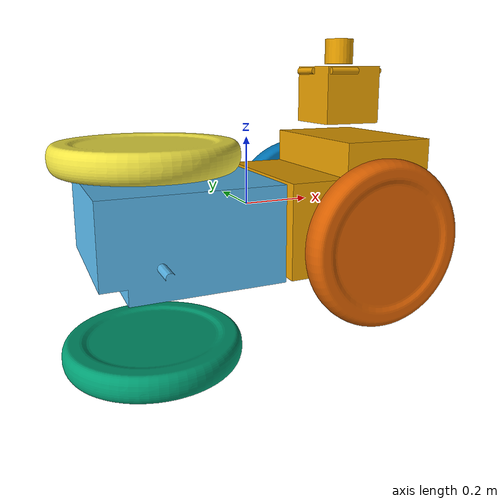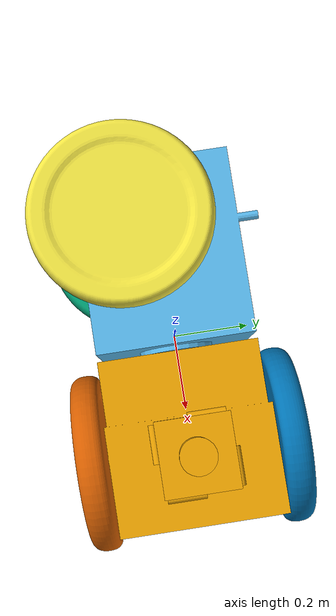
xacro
<?xml version='1.0' encoding='utf-8'?>
<robot name='r3' xmlns:xacro="http://ros.org/wiki/xacro">
  <xacro:arg name="name" default="r3"/>
  <xacro:property name="robot_namespace" value="$(arg name)"/>

  <link name='${robot_namespace}/base_link'>
    <inertial>
      <origin xyz='0.002132 0.043885 0.087872' rpy='0 -0 0'/>
      <mass value='55.50075'/>
      <inertia ixx='4.45363' ixy='0.00719725' ixz='-0.0297844' iyy='2.48887' iyz='-0.388599' izz='5.58601'/>
    </inertial>
    <collision name='base_link_collision'>
      <origin xyz='0 0 0' rpy='0 -0 1.5708'/>
      <geometry>
        <mesh filename='meshes/base_link.STL' scale='1 1 1'/>
      </geometry>
    </collision>
    <collision name='base_link_fixed_joint_lump__sensor_payload_link_collision_1'>
      <origin xyz='0.31054 -0.0903 0.23288' rpy='1.5708 -0 0'/>
      <geometry>
        <mesh filename='meshes/payload_cube.stl' scale='1 1 1'/>
      </geometry>
    </collision>
    <visual name='base_link_visual'>
      <origin xyz='0 0 0' rpy='0 -0 1.5708'/>
      <geometry>
        <mesh filename='meshes/base_link.STL' scale='1 1 1'/>
      </geometry>
    </visual>
    <visual name='base_link_fixed_joint_lump__sensor_payload_link_visual_1'>
      <origin xyz='0.31054 -0.0903 0.23288' rpy='1.5708 -0 0'/>
      <geometry>
        <mesh filename='meshes/payload_cube.stl' scale='1 1 1'/>
      </geometry>
    </visual>
    <visual name='base_link_fixed_joint_lump__front_laser_visual_visual_2'>
      <origin xyz='0.310583 0.001835 0.44788' rpy='5e-06 -0 0'/>
      <geometry>
        <cylinder radius='0.04267' length='0.07357'/>
      </geometry>
    </visual>
    <visual name='base_link_fixed_joint_lump__rs_back_link_visual_3'>
      <origin xyz='0.22054 0.037199 0.38988' rpy='1.5708 -0 3.14159'/>
      <geometry>
        <cylinder radius='0.01' length='0.09'/>
      </geometry>
    </visual>
    <visual name='base_link_fixed_joint_lump__rs_front_link_visual_4'>
      <origin xyz='0.40054 -0.035301 0.38988' rpy='1.5708 -0 0'/>
      <geometry>
        <cylinder radius='0.01' length='0.09'/>
      </geometry>
    </visual>
    <visual name='base_link_fixed_joint_lump__rs_left_link_visual_5'>
      <origin xyz='0.34854 0.091699 0.389881' rpy='1.5708 -4e-06 1.5708'/>
      <geometry>
        <cylinder radius='0.01' length='0.09'/>
      </geometry>
    </visual>
    <visual name='base_link_fixed_joint_lump__rs_right_link_visual_6'>
      <origin xyz='0.27254 -0.090301 0.38988' rpy='1.5708 -4e-06 1.5708'/>
      <geometry>
        <cylinder radius='0.01' length='0.09'/>
      </geometry>
    </visual>
  </link>
  <sensor name='imu_sensor' update_rate='250'>
    <parent link='base_link'/>
    <origin xyz='0 0 0' rpy='0 -0 0'/>
  </sensor>
  <sensor name='front_laser' update_rate='10'>
    <parent link='base_link'/>
    <origin xyz='0.310583 0.001835 0.44788' rpy='5e-06 -0 0'/>
    <ray>
      <horizontal samples='10000' resolution='0.1' min_angle='-3.14159' max_angle='3.14159' />
      <vertical samples='16' resolution='1' min_angle='-0.261799' max_angle='0.261799' />
    </ray>
  </sensor>
  <sensor name='rs_rear' update_rate='15'>
    <parent link='base_link'/>
    <origin xyz='0.22054 0.037199 0.38988' rpy='-2e-06 -0 3.14159'/>
    <camera>
      <image width='320' height='240' format='R8G8B8' hfov='1.0472' near='0.01' far='300' />
    </camera>
  </sensor>
  <sensor name='rs_front' update_rate='15'>
    <parent link='base_link'/>
    <origin xyz='0.40054 -0.035301 0.38988' rpy='5e-06 -0 0'/>
    <camera>
      <image width='320' height='240' format='R8G8B8' hfov='1.0472' near='0.01' far='300' />
    </camera>
  </sensor>
  <sensor name='rs_left' update_rate='15'>
    <parent link='base_link'/>
    <origin xyz='0.34854 0.091699 0.389881' rpy='1e-06 -4e-06 1.5708'/>
    <camera>
      <image width='320' height='240' format='R8G8B8' hfov='1.0472' near='0.01' far='300' />
    </camera>
  </sensor>
  <sensor name='rs_right' update_rate='15'>
    <parent link='base_link'/>
    <origin xyz='0.27254 -0.090301 0.38988' rpy='1e-06 4e-06 -1.5708'/>
    <camera>
      <image width='320' height='240' format='R8G8B8' hfov='1.0472' near='0.01' far='300' />
    </camera>
  </sensor>
  <link name='${robot_namespace}/Rear_Rocker_Link'>
    <inertial>
      <origin xyz='0.101306 -0.050257 0.228473' rpy='0 -0 0'/>
      <mass value='21.41965'/>
      <inertia ixx='0.848992' ixy='0.00301842' ixz='5.21788e-06' iyy='1.03049' iyz='1.2171e-07' izz='0.43679'/>
    </inertial>
    <collision name='Rear_Rocker_Link_collision'>
      <origin xyz='-0.31979 0 -0.22847' rpy='0 -0 0'/>
      <geometry>
        <mesh filename='meshes/Center Pivot.STL' scale='1 1 1'/>
      </geometry>
    </collision>
    <visual name='Rear_Rocker_Link_visual'>
      <origin xyz='-0.31979 0 -0.22847' rpy='0 -0 0'/>
      <geometry>
        <mesh filename='meshes/Center Pivot.STL' scale='1 1 1'/>
      </geometry>
    </visual>
  </link>
  <link name='${robot_namespace}/left_rear_wheel_link'>
    <inertial>
      <origin xyz='-4e-06 0 -0.038479' rpy='0 0 -0'/>
      <mass value='5.5398'/>
      <inertia ixx='0.127932' ixy='6.41777e-06' ixz='2.40271e-06' iyy='0.0695645' iyz='1.35439e-09' izz='0.0695643'/>
    </inertial>
    <collision name='left_rear_wheel_link_collision'>
      <origin xyz='0 0 -0.039' rpy='0 0 -0'/>
      <geometry>
        <cylinder radius='0.246' length='0.0765'/>
      </geometry>
    </collision>
    <visual name='left_rear_wheel_link_visual'>
      <origin xyz='0 0 0' rpy='0 0 -0'/>
      <geometry>
        <mesh filename='meshes/rl_wheel.STL' scale='1 1 1'/>
      </geometry>
    </visual>
  </link>
  <link name='${robot_namespace}/right_rear_wheel_link'>
    <inertial>
      <origin xyz='4e-06 0 -0.038479' rpy='0 -0 0'/>
      <mass value='5.5398'/>
      <inertia ixx='0.127932' ixy='6.41777e-06' ixz='2.40271e-06' iyy='0.0695645' iyz='1.35439e-09' izz='0.0695643'/>
    </inertial>
    <collision name='right_rear_wheel_link_collision'>
      <origin xyz='0 0 -0.039' rpy='0 -0 0'/>
      <geometry>
        <cylinder radius='0.246' length='0.0765'/>
      </geometry>
    </collision>
    <visual name='right_rear_wheel_link_visual'>
      <origin xyz='0 0 0' rpy='0 -0 0'/>
      <geometry>
        <mesh filename='meshes/rr_wheel.STL' scale='1 1 1'/>
      </geometry>
    </visual>
  </link>
  <link name='${robot_namespace}/left_front_wheel_link'>
    <inertial>
      <origin xyz='4e-06 0 -0.038006' rpy='0 -0 0'/>
      <mass value='5.5398'/>
      <inertia ixx='0.127932' ixy='6.41777e-06' ixz='2.40271e-06' iyy='0.0695645' iyz='1.35439e-09' izz='0.0695643'/>
    </inertial>
    <collision name='left_front_wheel_link_collision'>
      <origin xyz='0 0 -0.039' rpy='0 -0 0'/>
      <geometry>
        <cylinder radius='0.246' length='0.0765'/>
      </geometry>
    </collision>
    <visual name='left_front_wheel_link_visual'>
      <origin xyz='0 0 0' rpy='0 -0 0'/>
      <geometry>
        <mesh filename='meshes/fl_wheel.STL' scale='1 1 1'/>
      </geometry>
    </visual>
  </link>
  <link name='${robot_namespace}/right_front_wheel_link'>
    <inertial>
      <origin xyz='4e-06 0 -0.038479' rpy='0 -0 0'/>
      <mass value='5.5398'/>
      <inertia ixx='0.127932' ixy='6.41777e-06' ixz='2.40271e-06' iyy='0.0695645' iyz='1.35439e-09' izz='0.0695643'/>
    </inertial>
    <collision name='right_front_wheel_link_collision'>
      <origin xyz='0 0 -0.039' rpy='0 -0 0'/>
      <geometry>
        <cylinder radius='0.246' length='0.0765'/>
      </geometry>
    </collision>
    <visual name='right_front_wheel_link_visual'>
      <origin xyz='0 0 0' rpy='0 -0 0'/>
      <geometry>
        <mesh filename='meshes/fr_wheel.STL' scale='1 1 1'/>
      </geometry>
    </visual>
  </link>
  <joint name='Center Pivot' type='revolute'>
    <origin xyz='0 0 -0.092278' rpy='-1.5708 0 0'/>
    <parent link='${robot_namespace}/base_link'/>
    <child link='${robot_namespace}/Rear_Rocker_Link'/>
    <dynamics damping='0' friction='0' />
    <axis xyz='-1 0 0'/>
    <limit lower='-0.5585' upper='0.5585' effort='30' velocity='1'/>
  </joint>
  <joint name='left_rear_wheel' type='revolute'>
    <origin xyz='-0.31979 0.22844 -0.092279' rpy='-1.5708 1.37059 -3.14159'/>
    <parent link='${robot_namespace}/Rear_Rocker_Link'/>
    <child link='${robot_namespace}/left_rear_wheel_link'/>
    <dynamics damping='10' friction='0.1' />
    <axis xyz='0 0 -1'/>
    <limit lower='-1e+16' upper='1e+16' effort='-1' velocity='-1'/>
  </joint>
  <joint name='right_rear_wheel' type='revolute'>
    <origin xyz='-0.31979 -0.22844 -0.092277' rpy='-1.5708 0 0'/>
    <parent link='${robot_namespace}/Rear_Rocker_Link'/>
    <child link='${robot_namespace}/right_rear_wheel_link'/>
    <dynamics damping='10' friction='0.1' />
    <axis xyz='0 0 1'/>
    <limit lower='-1e+16' upper='1e+16' effort='-1' velocity='-1'/>
  </joint>
  <joint name='left_front_wheel' type='revolute'>
    <origin xyz='0.31064 0.22844 -0.092278' rpy='-1.5708 1.3703 3.14159'/>
    <parent link='${robot_namespace}/base_link'/>
    <child link='${robot_namespace}/left_front_wheel_link'/>
    <dynamics damping='10' friction='0.1' />
    <axis xyz='0 0 -1'/>
    <limit lower='-1e+16' upper='1e+16' effort='-1' velocity='-1'/>
  </joint>
  <joint name='right_front_wheel' type='revolute'>
    <origin xyz='0.31064 -0.22847 -0.092278' rpy='-1.5708 0 0'/>
    <parent link='${robot_namespace}/base_link'/>
    <child link='${robot_namespace}/right_front_wheel_link'/>
    <dynamics damping='10' friction='0.1' />
    <axis xyz='0 0 1'/>
    <limit lower='-1e+16' upper='1e+16' effort='-1' velocity='-1'/>
  </joint>
</robot>
